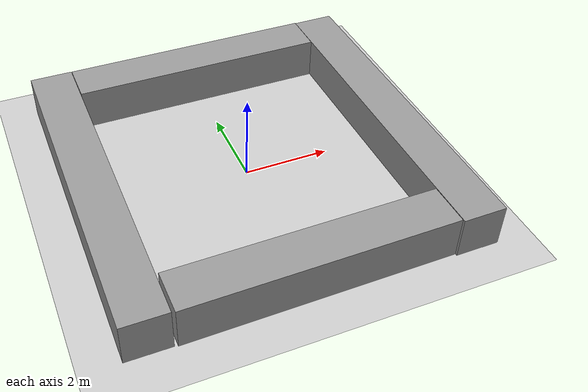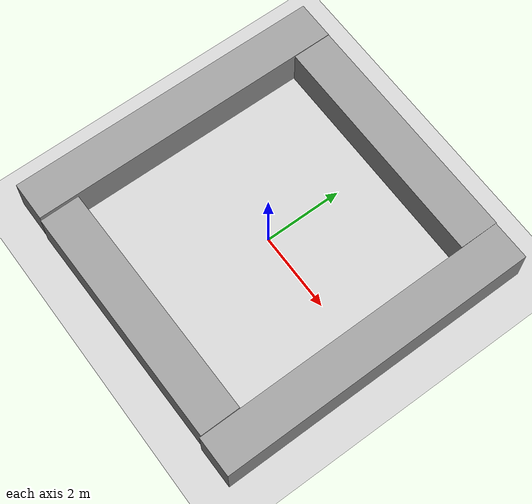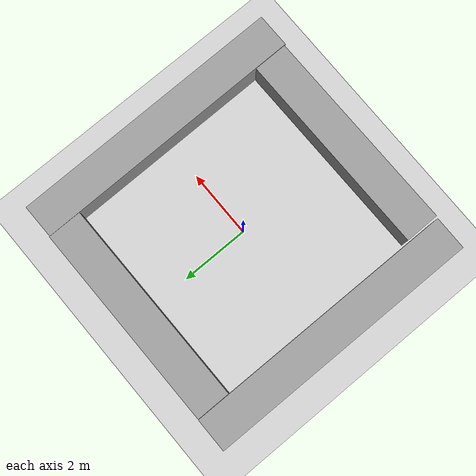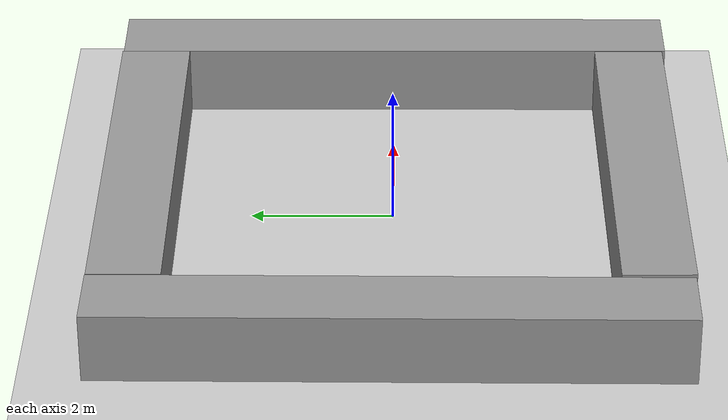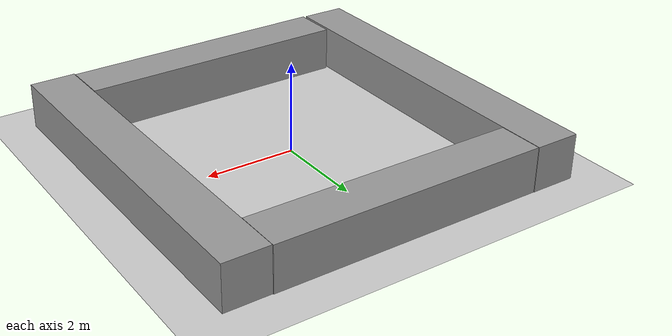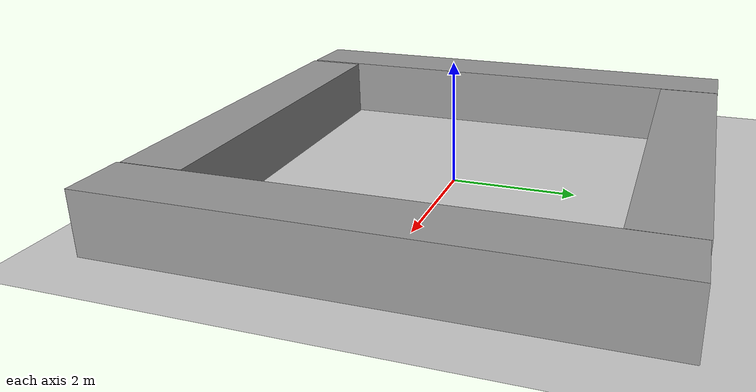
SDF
<sdf version="1.6">
 <world name="default">
  <physics name="default_physics" default="0" type="ode">
   <ode>
    <solver>
     <type>quick</type>
     <iters>20</iters>
     <sor>1</sor>
     <use_dynamic_moi_rescaling>0</use_dynamic_moi_rescaling>
    </solver>
    <constraints>
     <cfm>0</cfm>
     <erp>0.2</erp>
     <contact_max_correcting_vel>100</contact_max_correcting_vel>
     <contact_surface_layer>0</contact_surface_layer>
    </constraints>
   </ode>
   <max_step_size>0.001</max_step_size>
   <real_time_factor>1</real_time_factor>
   <real_time_update_rate>1000</real_time_update_rate>
  </physics>
  <light name="sun" type="directional">
   <pose>0 0 10 0 -0 0</pose>
   <diffuse>0.8 0.8 0.8 1</diffuse>
   <specular>0.2 0.2 0.2 1</specular>
   <attenuation>
    <range>1000</range>
    <constant>0.9</constant>
    <linear>0.01</linear>
    <quadratic>0.001</quadratic>
   </attenuation>
   <direction>-0.5 0.1 -0.9</direction>
  </light>
  <model name="ground_plane">
   <static>1</static>
   <link name="link">
    <collision name="collision">
     <geometry><plane><normal>0 0 1</normal><size>100 100</size></plane></geometry>
     <surface>
      <contact><collide_bitmask>65535</collide_bitmask></contact>
      <friction><ode><mu>100</mu><mu2>50</mu2></ode></friction>
     </surface>
    </collision>
    <visual name="visual">
     <cast_shadows>0</cast_shadows>
     <geometry><plane><normal>0 0 1</normal><size>100 100</size></plane></geometry>
     <material>
      <script><uri>file://media/materials/scripts/gazebo.material</uri><name>Gazebo/Grey</name></script>
     </material>
    </visual>
   </link>
  </model>
  <gravity>0 0 -9.8</gravity>
  <magnetic_field>6e-06 2.3e-05 -4.2e-05</magnetic_field>
  <atmosphere type="adiabatic"/>
  <scene><ambient>0.4 0.4 0.4 1</ambient><background>0.7 0.7 0.7 1</background><shadows>1</shadows></scene>
  <audio><device>default</device></audio>
  <spherical_coordinates>
   <surface_model>EARTH_WGS84</surface_model>
   <latitude_deg>0</latitude_deg>
   <longitude_deg>0</longitude_deg>
   <elevation>0</elevation>
   <heading_deg>0</heading_deg>
  </spherical_coordinates>
  <model name="unit_box_0">
   <link name="link">
    <inertial>
     <mass>10000</mass>
     <inertia><ixx>1666.67</ixx><ixy>0</ixy><ixz>0</ixz><iyy>31490.3</iyy><iyz>0</iyz><izz>31490.3</izz></inertia>
    </inertial>
    <visual name="visual">
     <geometry><box><size>6.06534 1 1</size></box></geometry>
     <material>
      <script><name>Gazebo/Grey</name><uri>file://media/materials/scripts/gazebo.material</uri></script>
      <shader type="vertex"><normal_map>__default__</normal_map></shader>
     </material>
    </visual>
    <collision name="collision">
     <geometry><box><size>6.06534 1 1</size></box></geometry>
     <surface>
      <friction>
       <ode><mu>1</mu><mu2>1</mu2><fdir1>0 0 0</fdir1><slip1>0</slip1><slip2>0</slip2></ode>
       <torsional>
        <coefficient>1</coefficient>
        <patch_radius>0</patch_radius>
        <surface_radius>0</surface_radius>
        <use_patch_radius>1</use_patch_radius>
        <ode><slip>0</slip></ode>
       </torsional>
      </friction>
      <bounce><restitution_coefficient>0</restitution_coefficient><threshold>1e+06</threshold></bounce>
      <contact>
       <collide_without_contact>0</collide_without_contact>
       <collide_without_contact_bitmask>1</collide_without_contact_bitmask>
       <collide_bitmask>1</collide_bitmask>
       <ode>
        <soft_cfm>0</soft_cfm>
        <soft_erp>0.2</soft_erp>
        <kp>1e+13</kp>
        <kd>1</kd>
        <max_vel>0.01</max_vel>
        <min_depth>0</min_depth>
       </ode>
       <bullet>
        <split_impulse>1</split_impulse>
        <split_impulse_penetration_threshold>-0.01</split_impulse_penetration_threshold>
        <soft_cfm>0</soft_cfm>
        <soft_erp>0.2</soft_erp>
        <kp>1e+13</kp>
        <kd>1</kd>
       </bullet>
      </contact>
     </surface>
    </collision>
   </link>
   <static>0</static>
   <pose>-0.012709 3.53604 0.499996 -8e-06 -0 0.000983</pose>
  </model>
  <model name="unit_box_0_clone">
   <link name="link">
    <inertial>
     <mass>10000</mass>
     <inertia><ixx>1666.67</ixx><ixy>0</ixy><ixz>0</ixz><iyy>31490.3</iyy><iyz>0</iyz><izz>31490.3</izz></inertia>
    </inertial>
    <visual name="visual">
     <geometry><box><size>6.06534 1 1</size></box></geometry>
     <material>
      <script><name>Gazebo/Grey</name><uri>file://media/materials/scripts/gazebo.material</uri></script>
      <shader type="vertex"><normal_map>__default__</normal_map></shader>
     </material>
    </visual>
    <collision name="collision">
     <geometry><box><size>6.06534 1 1</size></box></geometry>
     <surface>
      <friction>
       <ode><mu>1</mu><mu2>1</mu2><fdir1>0 0 0</fdir1><slip1>0</slip1><slip2>0</slip2></ode>
       <torsional>
        <coefficient>1</coefficient>
        <patch_radius>0</patch_radius>
        <surface_radius>0</surface_radius>
        <use_patch_radius>1</use_patch_radius>
        <ode><slip>0</slip></ode>
       </torsional>
      </friction>
      <bounce><restitution_coefficient>0</restitution_coefficient><threshold>1e+06</threshold></bounce>
      <contact>
       <collide_without_contact>0</collide_without_contact>
       <collide_without_contact_bitmask>1</collide_without_contact_bitmask>
       <collide_bitmask>1</collide_bitmask>
       <ode>
        <soft_cfm>0</soft_cfm>
        <soft_erp>0.2</soft_erp>
        <kp>1e+13</kp>
        <kd>1</kd>
        <max_vel>0.01</max_vel>
        <min_depth>0</min_depth>
       </ode>
       <bullet>
        <split_impulse>1</split_impulse>
        <split_impulse_penetration_threshold>-0.01</split_impulse_penetration_threshold>
        <soft_cfm>0</soft_cfm>
        <soft_erp>0.2</soft_erp>
        <kp>1e+13</kp>
        <kd>1</kd>
       </bullet>
      </contact>
     </surface>
    </collision>
   </link>
   <static>0</static>
   <pose>0.015359 -3.50962 0.5 1e-06 -0 0.008212</pose>
  </model>
  <model name="unit_box_">
   <link name="link">
    <inertial>
     <mass>10000</mass>
     <inertia><ixx>54847.1</ixx><ixy>0</ixy><ixz>0</ixz><iyy>1666.67</iyy><iyz>0</iyz><izz>54847.1</izz></inertia>
    </inertial>
    <visual name="visual">
     <geometry><box><size>1 8.05087 1</size></box></geometry>
     <material>
      <script><name>Gazebo/Grey</name><uri>file://media/materials/scripts/gazebo.material</uri></script>
      <shader type="vertex"><normal_map>__default__</normal_map></shader>
     </material>
    </visual>
    <collision name="collision">
     <geometry><box><size>1 8.05087 1</size></box></geometry>
     <surface>
      <friction>
       <ode><mu>1</mu><mu2>1</mu2><fdir1>0 0 0</fdir1><slip1>0</slip1><slip2>0</slip2></ode>
       <torsional>
        <coefficient>1</coefficient>
        <patch_radius>0</patch_radius>
        <surface_radius>0</surface_radius>
        <use_patch_radius>1</use_patch_radius>
        <ode><slip>0</slip></ode>
       </torsional>
      </friction>
      <bounce><restitution_coefficient>0</restitution_coefficient><threshold>1e+06</threshold></bounce>
      <contact>
       <collide_without_contact>0</collide_without_contact>
       <collide_without_contact_bitmask>1</collide_without_contact_bitmask>
       <collide_bitmask>1</collide_bitmask>
       <ode>
        <soft_cfm>0</soft_cfm>
        <soft_erp>0.2</soft_erp>
        <kp>1e+13</kp>
        <kd>1</kd>
        <max_vel>0.01</max_vel>
        <min_depth>0</min_depth>
       </ode>
       <bullet>
        <split_impulse>1</split_impulse>
        <split_impulse_penetration_threshold>-0.01</split_impulse_penetration_threshold>
        <soft_cfm>0</soft_cfm>
        <soft_erp>0.2</soft_erp>
        <kp>1e+13</kp>
        <kd>1</kd>
       </bullet>
      </contact>
     </surface>
    </collision>
   </link>
   <static>0</static>
   <pose>3.54188 -0.003052 0.5 0 1e-06 0.00517</pose>
  </model>
  <model name="unit_box_clone1">
   <link name="link">
    <inertial>
     <mass>10000</mass>
     <inertia><ixx>54847.1</ixx><ixy>0</ixy><ixz>0</ixz><iyy>1666.67</iyy><iyz>0</iyz><izz>54847.1</izz></inertia>
    </inertial>
    <visual name="visual">
     <geometry><box><size>1 8.05087 1</size></box></geometry>
     <material>
      <script><name>Gazebo/Grey</name><uri>file://media/materials/scripts/gazebo.material</uri></script>
      <shader type="vertex"><normal_map>__default__</normal_map></shader>
     </material>
    </visual>
    <collision name="collision">
     <geometry><box><size>1 8.05087 1</size></box></geometry>
     <surface>
      <friction>
       <ode><mu>1</mu><mu2>1</mu2><fdir1>0 0 0</fdir1><slip1>0</slip1><slip2>0</slip2></ode>
       <torsional>
        <coefficient>1</coefficient>
        <patch_radius>0</patch_radius>
        <surface_radius>0</surface_radius>
        <use_patch_radius>1</use_patch_radius>
        <ode><slip>0</slip></ode>
       </torsional>
      </friction>
      <bounce><restitution_coefficient>0</restitution_coefficient><threshold>1e+06</threshold></bounce>
      <contact>
       <collide_without_contact>0</collide_without_contact>
       <collide_without_contact_bitmask>1</collide_without_contact_bitmask>
       <collide_bitmask>1</collide_bitmask>
       <ode>
        <soft_cfm>0</soft_cfm>
        <soft_erp>0.2</soft_erp>
        <kp>1e+13</kp>
        <kd>1</kd>
        <max_vel>0.01</max_vel>
        <min_depth>0</min_depth>
       </ode>
       <bullet>
        <split_impulse>1</split_impulse>
        <split_impulse_penetration_threshold>-0.01</split_impulse_penetration_threshold>
        <soft_cfm>0</soft_cfm>
        <soft_erp>0.2</soft_erp>
        <kp>1e+13</kp>
        <kd>1</kd>
       </bullet>
      </contact>
     </surface>
    </collision>
   </link>
   <static>0</static>
   <pose>-3.56794 0.015418 0.499996 0 -8e-06 -0.003047</pose>
  </model>
 </world>
</sdf>
